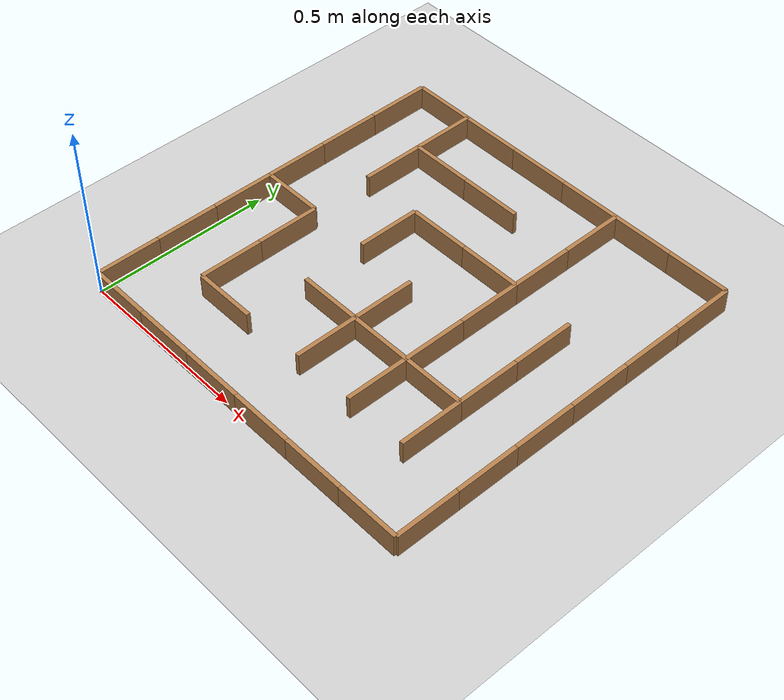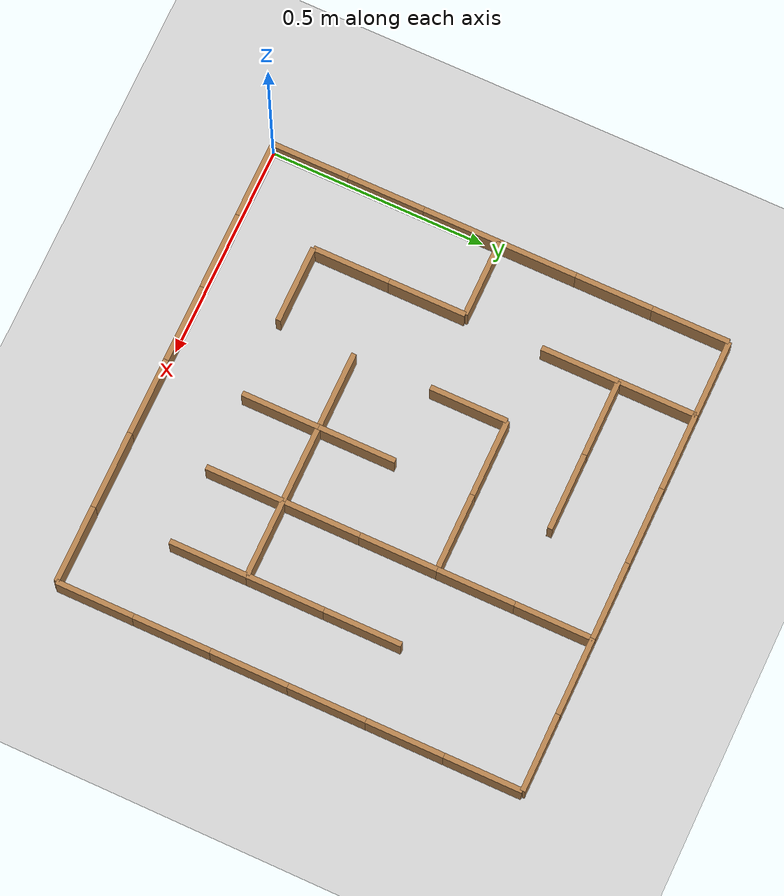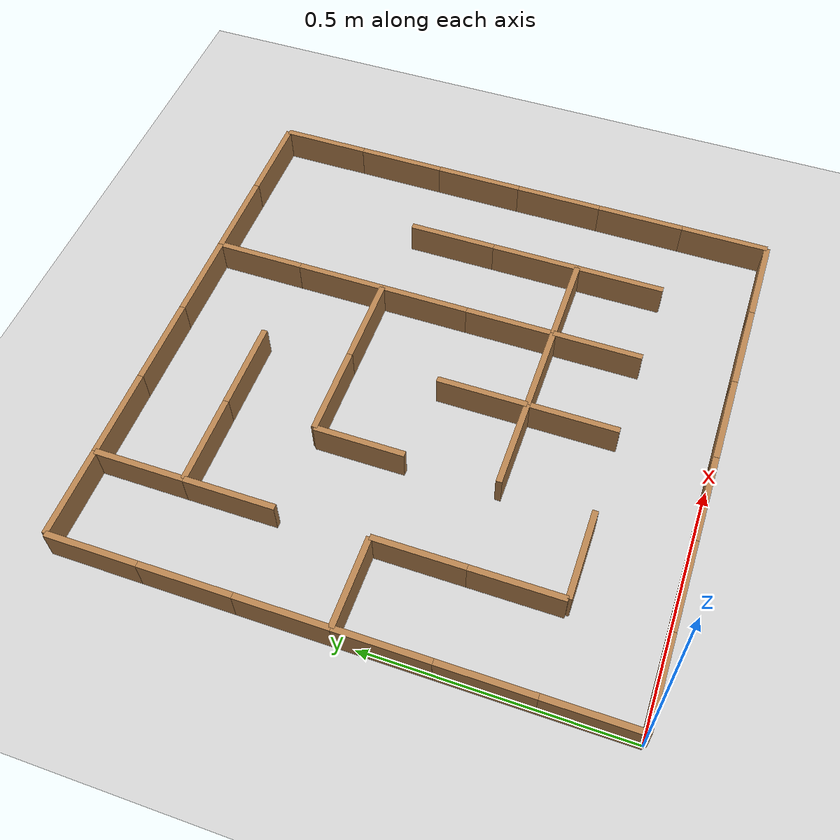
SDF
<?xml version="1.0" ?>
<sdf version="1.5">
  <world name="TestMazeAutogen">
    <include>
      <uri>model://sun</uri>
    </include>
    <include>
      <uri>model://ground_plane</uri>
    </include>
    <include>
      <uri>model://maze_wall</uri>
      <name>block1</name>
      <pose>0.090000 0.000000 0.025000 0.000000 0.000000 0.000000</pose>
    </include>

    <include>
      <uri>model://maze_wall</uri>
      <name>block2</name>
      <pose>0.000000 0.090000 0.025000 0.000000 0.000000 1.570700</pose>
    </include>

    <include>
      <uri>model://maze_wall</uri>
      <name>block3</name>
      <pose>0.000000 0.270000 0.025000 0.000000 0.000000 1.570700</pose>
    </include>

    <include>
      <uri>model://maze_wall</uri>
      <name>block4</name>
      <pose>0.180000 0.270000 0.025000 0.000000 0.000000 1.570700</pose>
    </include>

    <include>
      <uri>model://maze_wall</uri>
      <name>block5</name>
      <pose>0.000000 0.450000 0.025000 0.000000 0.000000 1.570700</pose>
    </include>

    <include>
      <uri>model://maze_wall</uri>
      <name>block6</name>
      <pose>0.180000 0.450000 0.025000 0.000000 0.000000 1.570700</pose>
    </include>

    <include>
      <uri>model://maze_wall</uri>
      <name>block7</name>
      <pose>0.090000 0.540000 0.025000 0.000000 0.000000 0.000000</pose>
    </include>

    <include>
      <uri>model://maze_wall</uri>
      <name>block8</name>
      <pose>0.000000 0.630000 0.025000 0.000000 0.000000 1.570700</pose>
    </include>

    <include>
      <uri>model://maze_wall</uri>
      <name>block9</name>
      <pose>0.000000 0.810000 0.025000 0.000000 0.000000 1.570700</pose>
    </include>

    <include>
      <uri>model://maze_wall</uri>
      <name>block10</name>
      <pose>0.180000 0.810000 0.025000 0.000000 0.000000 1.570700</pose>
    </include>

    <include>
      <uri>model://maze_wall</uri>
      <name>block11</name>
      <pose>0.000000 0.990000 0.025000 0.000000 0.000000 1.570700</pose>
    </include>

    <include>
      <uri>model://maze_wall</uri>
      <name>block12</name>
      <pose>0.180000 0.990000 0.025000 0.000000 0.000000 1.570700</pose>
    </include>

    <include>
      <uri>model://maze_wall</uri>
      <name>block13</name>
      <pose>0.090000 1.080000 0.025000 0.000000 0.000000 0.000000</pose>
    </include>

    <include>
      <uri>model://maze_wall</uri>
      <name>block14</name>
      <pose>0.270000 0.000000 0.025000 0.000000 0.000000 0.000000</pose>
    </include>

    <include>
      <uri>model://maze_wall</uri>
      <name>block15</name>
      <pose>0.270000 0.180000 0.025000 0.000000 0.000000 0.000000</pose>
    </include>

    <include>
      <uri>model://maze_wall</uri>
      <name>block16</name>
      <pose>0.360000 0.630000 0.025000 0.000000 0.000000 1.570700</pose>
    </include>

    <include>
      <uri>model://maze_wall</uri>
      <name>block17</name>
      <pose>0.270000 0.900000 0.025000 0.000000 0.000000 0.000000</pose>
    </include>

    <include>
      <uri>model://maze_wall</uri>
      <name>block18</name>
      <pose>0.270000 1.080000 0.025000 0.000000 0.000000 0.000000</pose>
    </include>

    <include>
      <uri>model://maze_wall</uri>
      <name>block19</name>
      <pose>0.450000 0.000000 0.025000 0.000000 0.000000 0.000000</pose>
    </include>

    <include>
      <uri>model://maze_wall</uri>
      <name>block20</name>
      <pose>0.540000 0.270000 0.025000 0.000000 0.000000 1.570700</pose>
    </include>

    <include>
      <uri>model://maze_wall</uri>
      <name>block21</name>
      <pose>0.450000 0.360000 0.025000 0.000000 0.000000 0.000000</pose>
    </include>

    <include>
      <uri>model://maze_wall</uri>
      <name>block22</name>
      <pose>0.540000 0.450000 0.025000 0.000000 0.000000 1.570700</pose>
    </include>

    <include>
      <uri>model://maze_wall</uri>
      <name>block23</name>
      <pose>0.450000 0.720000 0.025000 0.000000 0.000000 0.000000</pose>
    </include>

    <include>
      <uri>model://maze_wall</uri>
      <name>block24</name>
      <pose>0.450000 0.900000 0.025000 0.000000 0.000000 0.000000</pose>
    </include>

    <include>
      <uri>model://maze_wall</uri>
      <name>block25</name>
      <pose>0.450000 1.080000 0.025000 0.000000 0.000000 0.000000</pose>
    </include>

    <include>
      <uri>model://maze_wall</uri>
      <name>block26</name>
      <pose>0.630000 0.000000 0.025000 0.000000 0.000000 0.000000</pose>
    </include>

    <include>
      <uri>model://maze_wall</uri>
      <name>block27</name>
      <pose>0.720000 0.270000 0.025000 0.000000 0.000000 1.570700</pose>
    </include>

    <include>
      <uri>model://maze_wall</uri>
      <name>block28</name>
      <pose>0.630000 0.360000 0.025000 0.000000 0.000000 0.000000</pose>
    </include>

    <include>
      <uri>model://maze_wall</uri>
      <name>block29</name>
      <pose>0.720000 0.450000 0.025000 0.000000 0.000000 1.570700</pose>
    </include>

    <include>
      <uri>model://maze_wall</uri>
      <name>block30</name>
      <pose>0.720000 0.630000 0.025000 0.000000 0.000000 1.570700</pose>
    </include>

    <include>
      <uri>model://maze_wall</uri>
      <name>block31</name>
      <pose>0.630000 0.720000 0.025000 0.000000 0.000000 0.000000</pose>
    </include>

    <include>
      <uri>model://maze_wall</uri>
      <name>block32</name>
      <pose>0.720000 0.810000 0.025000 0.000000 0.000000 1.570700</pose>
    </include>

    <include>
      <uri>model://maze_wall</uri>
      <name>block33</name>
      <pose>0.720000 0.990000 0.025000 0.000000 0.000000 1.570700</pose>
    </include>

    <include>
      <uri>model://maze_wall</uri>
      <name>block34</name>
      <pose>0.630000 1.080000 0.025000 0.000000 0.000000 0.000000</pose>
    </include>

    <include>
      <uri>model://maze_wall</uri>
      <name>block35</name>
      <pose>0.810000 0.000000 0.025000 0.000000 0.000000 0.000000</pose>
    </include>

    <include>
      <uri>model://maze_wall</uri>
      <name>block36</name>
      <pose>0.900000 0.270000 0.025000 0.000000 0.000000 1.570700</pose>
    </include>

    <include>
      <uri>model://maze_wall</uri>
      <name>block37</name>
      <pose>0.810000 0.360000 0.025000 0.000000 0.000000 0.000000</pose>
    </include>

    <include>
      <uri>model://maze_wall</uri>
      <name>block38</name>
      <pose>0.900000 0.450000 0.025000 0.000000 0.000000 1.570700</pose>
    </include>

    <include>
      <uri>model://maze_wall</uri>
      <name>block39</name>
      <pose>0.900000 0.630000 0.025000 0.000000 0.000000 1.570700</pose>
    </include>

    <include>
      <uri>model://maze_wall</uri>
      <name>block40</name>
      <pose>0.810000 1.080000 0.025000 0.000000 0.000000 0.000000</pose>
    </include>

    <include>
      <uri>model://maze_wall</uri>
      <name>block41</name>
      <pose>0.990000 0.000000 0.025000 0.000000 0.000000 0.000000</pose>
    </include>

    <include>
      <uri>model://maze_wall</uri>
      <name>block42</name>
      <pose>1.080000 0.090000 0.025000 0.000000 0.000000 1.570700</pose>
    </include>

    <include>
      <uri>model://maze_wall</uri>
      <name>block43</name>
      <pose>1.080000 0.270000 0.025000 0.000000 0.000000 1.570700</pose>
    </include>

    <include>
      <uri>model://maze_wall</uri>
      <name>block44</name>
      <pose>1.080000 0.450000 0.025000 0.000000 0.000000 1.570700</pose>
    </include>

    <include>
      <uri>model://maze_wall</uri>
      <name>block45</name>
      <pose>1.080000 0.630000 0.025000 0.000000 0.000000 1.570700</pose>
    </include>

    <include>
      <uri>model://maze_wall</uri>
      <name>block46</name>
      <pose>1.080000 0.810000 0.025000 0.000000 0.000000 1.570700</pose>
    </include>

    <include>
      <uri>model://maze_wall</uri>
      <name>block47</name>
      <pose>1.080000 0.990000 0.025000 0.000000 0.000000 1.570700</pose>
    </include>

    <include>
      <uri>model://maze_wall</uri>
      <name>block48</name>
      <pose>0.990000 1.080000 0.025000 0.000000 0.000000 0.000000</pose>
    </include>
  </world>
</sdf>

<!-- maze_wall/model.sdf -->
<sdf version="1.5">
  <model name="maze_wall">
    <static>true</static>
    <link name="link">
      <pose>0 0 0 0 0 0</pose>
      <inertial>
        <mass>1000</mass>
        <inertia>
          <ixx>0.0008611666666666669</ixx>
          <ixy>0</ixy>
          <ixz>0</ixz>
          <iyy>0.0008611666666666669</iyy>
          <iyz>0</iyz>
          <izz>0.0008611666666666669</izz>
        </inertia>
      </inertial>

      <collision name="collision">
        <geometry>
          <box>
            <size>.18 .012 .050</size>
          </box>
        </geometry>
        <surface>
          <contact>
            <!-- Red Pine coefficients for longitudinal axis of the wood
                 according to:
                 http://www.fpl.fs.fed.us/documnts/fplgtr/fplgtr113/ch04.pdf -->
            <poissons_ratio>0.347</poissons_ratio>
            <elastic_modulus>8.8e+09</elastic_modulus>
            <ode>
              <kp>1000000</kp>
              <kd>100</kd>
              <max_vel>100.0</max_vel>
              <min_depth>0.0001</min_depth>
            </ode>
          </contact>
          <friction>
            <torsional>
              <coefficient>1.0</coefficient>
              <use_patch_radius>0</use_patch_radius>
              <surface_radius>0.01</surface_radius>
            </torsional>
          </friction>
        </surface>
      </collision>

      <visual name="visual">
        <geometry>
          <box>
            <size>.18 .012 .080</size>
          </box>
        </geometry>
        <material>
          <script>
            <uri>file://media/materials/scripts/gazebo.material</uri>
            <name>Gazebo/Wood</name>
          </script>
        </material>
      </visual>

    </link>
  </model>
</sdf>
